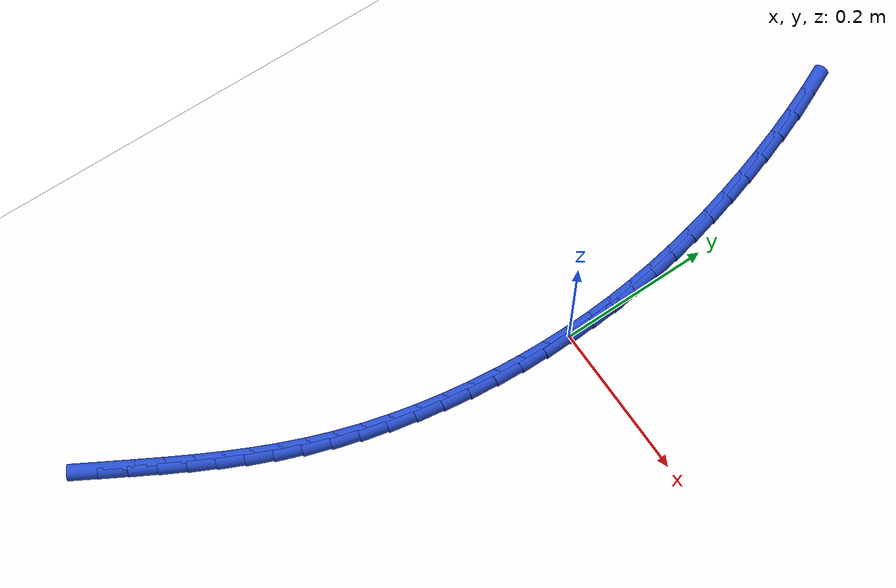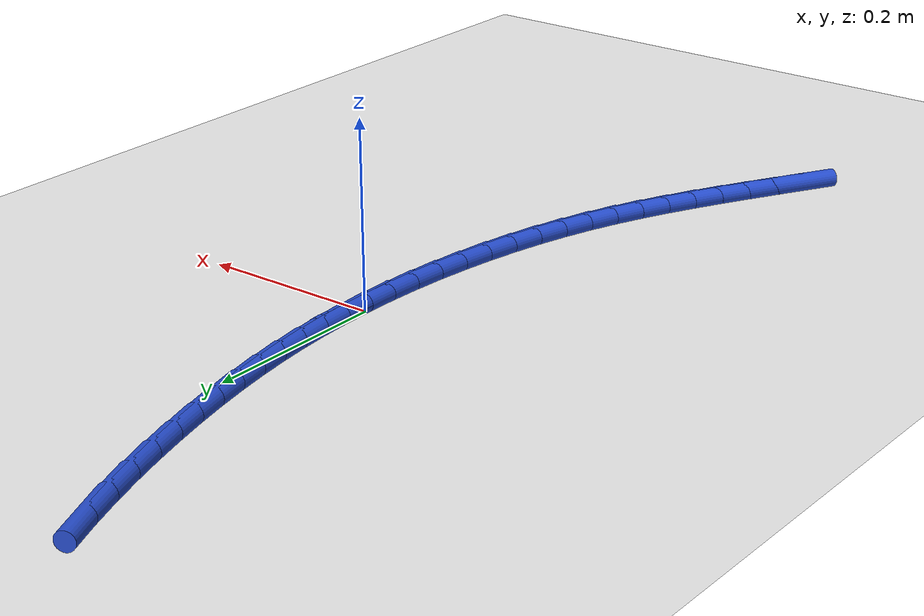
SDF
<sdf version="1.6">
 <world name="default">
  <model name="ground_plane">
   <static>1</static>
   <link name="link">
    <collision name="collision">
     <geometry><plane><normal>0 0 1</normal><size>100 100</size></plane></geometry>
     <surface><friction><ode><mu>100</mu><mu2>50</mu2></ode></friction></surface>
    </collision>
    <visual name="visual">
     <cast_shadows>0</cast_shadows>
     <geometry><plane><normal>0 0 1</normal><size>100 100</size></plane></geometry>
     <material>
      <script><uri>file://media/materials/scripts/gazebo.material</uri><name>Gazebo/WhiteGlow</name></script>
     </material>
    </visual>
   </link>
  </model>
  <model name="line">
   <link name="link_0">
    <pose>1.5612511283791264e-17 -6.938893903907228e-17 0.01 0 1.57 -1.5468301121806811</pose>
    <collision name="collision">
     <geometry><cylinder><radius>0.01</radius><length>0.08</length></cylinder></geometry>
    </collision>
    <visual name="visual">
     <material>
      <script><name>Gazebo/Blue</name><uri>file://media/materials/scripts/gazebo.material</uri></script>
     </material>
     <geometry><cylinder><radius>0.01</radius><length>0.08</length></cylinder></geometry>
    </visual>
   </link>
   <link name="link_1">
    <pose>-0.0008232692903801181 0.034344667049356056 0.01 0 1.57 -1.5116238401497004</pose>
    <collision name="collision">
     <geometry><cylinder><radius>0.01</radius><length>0.08</length></cylinder></geometry>
    </collision>
    <visual name="visual">
     <material>
      <script><name>Gazebo/Blue</name><uri>file://media/materials/scripts/gazebo.material</uri></script>
     </material>
     <geometry><cylinder><radius>0.01</radius><length>0.08</length></cylinder></geometry>
    </visual>
   </link>
   <link name="link_2">
    <pose>-0.0028426408338338882 0.0684316936888838 0.01 0 1.57 -1.4769170290811109</pose>
    <collision name="collision">
     <geometry><cylinder><radius>0.01</radius><length>0.08</length></cylinder></geometry>
    </collision>
    <visual name="visual">
     <material>
      <script><name>Gazebo/Blue</name><uri>file://media/materials/scripts/gazebo.material</uri></script>
     </material>
     <geometry><cylinder><radius>0.01</radius><length>0.08</length></cylinder></geometry>
    </visual>
   </link>
   <link name="link_3">
    <pose>-0.006037344235162098 0.10236156579821623 0.01 0 1.57 -1.4430966344124054</pose>
    <collision name="collision">
     <geometry><cylinder><radius>0.01</radius><length>0.08</length></cylinder></geometry>
    </collision>
    <visual name="visual">
     <material>
      <script><name>Gazebo/Blue</name><uri>file://media/materials/scripts/gazebo.material</uri></script>
     </material>
     <geometry><cylinder><radius>0.01</radius><length>0.08</length></cylinder></geometry>
    </visual>
   </link>
   <link name="link_4">
    <pose>-0.010386609099165552 0.13623476925698658 0.01 0 1.57 -1.4105220477981952</pose>
    <collision name="collision">
     <geometry><cylinder><radius>0.01</radius><length>0.08</length></cylinder></geometry>
    </collision>
    <visual name="visual">
     <material>
      <script><name>Gazebo/Blue</name><uri>file://media/materials/scripts/gazebo.material</uri></script>
     </material>
     <geometry><cylinder><radius>0.01</radius><length>0.08</length></cylinder></geometry>
    </visual>
   </link>
   <link name="link_5">
    <pose>-0.01586966503064504 0.17015178994482788 0.01 0 1.57 -1.3795110600730716</pose>
    <collision name="collision">
     <geometry><cylinder><radius>0.01</radius><length>0.08</length></cylinder></geometry>
    </collision>
    <visual name="visual">
     <material>
      <script><name>Gazebo/Blue</name><uri>file://media/materials/scripts/gazebo.material</uri></script>
     </material>
     <geometry><cylinder><radius>0.01</radius><length>0.08</length></cylinder></geometry>
    </visual>
   </link>
   <link name="link_6">
    <pose>-0.02246574163440137 0.20421311374137338 0.01 0 1.57 -1.3503296061707348</pose>
    <collision name="collision">
     <geometry><cylinder><radius>0.01</radius><length>0.08</length></cylinder></geometry>
    </collision>
    <visual name="visual">
     <material>
      <script><name>Gazebo/Blue</name><uri>file://media/materials/scripts/gazebo.material</uri></script>
     </material>
     <geometry><cylinder><radius>0.01</radius><length>0.08</length></cylinder></geometry>
    </visual>
   </link>
   <link name="link_7">
    <pose>-0.030154068515235354 0.2385192265262563 0.01 0 1.57 -1.323185847687289</pose>
    <collision name="collision">
     <geometry><cylinder><radius>0.01</radius><length>0.08</length></cylinder></geometry>
    </collision>
    <visual name="visual">
     <material>
      <script><name>Gazebo/Blue</name><uri>file://media/materials/scripts/gazebo.material</uri></script>
     </material>
     <geometry><cylinder><radius>0.01</radius><length>0.08</length></cylinder></geometry>
    </visual>
   </link>
   <link name="link_8">
    <pose>-0.038913875277947756 0.27317061417910954 0.01 0 1.57 -1.298228519508676</pose>
    <collision name="collision">
     <geometry><cylinder><radius>0.01</radius><length>0.08</length></cylinder></geometry>
    </collision>
    <visual name="visual">
     <material>
      <script><name>Gazebo/Blue</name><uri>file://media/materials/scripts/gazebo.material</uri></script>
     </material>
     <geometry><cylinder><radius>0.01</radius><length>0.08</length></cylinder></geometry>
    </visual>
   </link>
   <link name="link_9">
    <pose>-0.04872439152733941 0.30826776257956645 0.01 0 1.57 -1.2748941390368624</pose>
    <collision name="collision">
     <geometry><cylinder><radius>0.01</radius><length>0.08</length></cylinder></geometry>
    </collision>
    <visual name="visual">
     <material>
      <script><name>Gazebo/Blue</name><uri>file://media/materials/scripts/gazebo.material</uri></script>
     </material>
     <geometry><cylinder><radius>0.01</radius><length>0.08</length></cylinder></geometry>
    </visual>
   </link>
   <link name="link_10">
    <pose>-0.05957353465155941 0.3438559948654001 0.01 0 1.57 -1.2503113816151594</pose>
    <collision name="collision">
     <geometry><cylinder><radius>0.01</radius><length>0.08</length></cylinder></geometry>
    </collision>
    <visual name="visual">
     <material>
      <script><name>Gazebo/Blue</name><uri>file://media/materials/scripts/gazebo.material</uri></script>
     </material>
     <geometry><cylinder><radius>0.01</radius><length>0.08</length></cylinder></geometry>
    </visual>
   </link>
   <link name="link_11">
    <pose>-0.0714862545436593 0.3797454977274361 0.01 0 1.57 -1.2234359088546058</pose>
    <collision name="collision">
     <geometry><cylinder><radius>0.01</radius><length>0.08</length></cylinder></geometry>
    </collision>
    <visual name="visual">
     <material>
      <script><name>Gazebo/Blue</name><uri>file://media/materials/scripts/gazebo.material</uri></script>
     </material>
     <geometry><cylinder><radius>0.01</radius><length>0.08</length></cylinder></geometry>
    </visual>
   </link>
   <link name="link_12">
    <pose>-0.08449736651621093 0.41568381775965096 0.01 0 1.57 -1.1939030078868191</pose>
    <collision name="collision">
     <geometry><cylinder><radius>0.01</radius><length>0.08</length></cylinder></geometry>
    </collision>
    <visual name="visual">
     <material>
      <script><name>Gazebo/Blue</name><uri>file://media/materials/scripts/gazebo.material</uri></script>
     </material>
     <geometry><cylinder><radius>0.01</radius><length>0.08</length></cylinder></geometry>
    </visual>
   </link>
   <link name="link_13">
    <pose>-0.09864168596992146 0.4514185009964106 0.01 0 1.57 -1.161293176589283</pose>
    <collision name="collision">
     <geometry><cylinder><radius>0.01</radius><length>0.08</length></cylinder></geometry>
    </collision>
    <visual name="visual">
     <material>
      <script><name>Gazebo/Blue</name><uri>file://media/materials/scripts/gazebo.material</uri></script>
     </material>
     <geometry><cylinder><radius>0.01</radius><length>0.08</length></cylinder></geometry>
    </visual>
   </link>
   <link name="link_183">
    <pose>-0.17157033121396034 -0.5544643690904087 0.01 0 1.57 1.044372744416787</pose>
    <collision name="collision">
     <geometry><cylinder><radius>0.01</radius><length>0.08</length></cylinder></geometry>
    </collision>
    <visual name="visual">
     <material>
      <script><name>Gazebo/Blue</name><uri>file://media/materials/scripts/gazebo.material</uri></script>
     </material>
     <geometry><cylinder><radius>0.01</radius><length>0.08</length></cylinder></geometry>
    </visual>
   </link>
   <link name="link_184">
    <pose>-0.15343282038709385 -0.5232532213805158 0.01 0 1.57 1.0510500064535906</pose>
    <collision name="collision">
     <geometry><cylinder><radius>0.01</radius><length>0.08</length></cylinder></geometry>
    </collision>
    <visual name="visual">
     <material>
      <script><name>Gazebo/Blue</name><uri>file://media/materials/scripts/gazebo.material</uri></script>
     </material>
     <geometry><cylinder><radius>0.01</radius><length>0.08</length></cylinder></geometry>
    </visual>
   </link>
   <link name="link_185">
    <pose>-0.13587825011060112 -0.49257548245214755 0.01 0 1.57 1.063538218670783</pose>
    <collision name="collision">
     <geometry><cylinder><radius>0.01</radius><length>0.08</length></cylinder></geometry>
    </collision>
    <visual name="visual">
     <material>
      <script><name>Gazebo/Blue</name><uri>file://media/materials/scripts/gazebo.material</uri></script>
     </material>
     <geometry><cylinder><radius>0.01</radius><length>0.08</length></cylinder></geometry>
    </visual>
   </link>
   <link name="link_186">
    <pose>-0.11901221636616506 -0.46222803201359725 0.01 0 1.57 1.0820140534770863</pose>
    <collision name="collision">
     <geometry><cylinder><radius>0.01</radius><length>0.08</length></cylinder></geometry>
    </collision>
    <visual name="visual">
     <material>
      <script><name>Gazebo/Blue</name><uri>file://media/materials/scripts/gazebo.material</uri></script>
     </material>
     <geometry><cylinder><radius>0.01</radius><length>0.08</length></cylinder></geometry>
    </visual>
   </link>
   <link name="link_187">
    <pose>-0.10294031513546874 -0.4320077497731579 0.01 0 1.57 1.1065137101024496</pose>
    <collision name="collision">
     <geometry><cylinder><radius>0.01</radius><length>0.08</length></cylinder></geometry>
    </collision>
    <visual name="visual">
     <material>
      <script><name>Gazebo/Blue</name><uri>file://media/materials/scripts/gazebo.material</uri></script>
     </material>
     <geometry><cylinder><radius>0.01</radius><length>0.08</length></cylinder></geometry>
    </visual>
   </link>
   <link name="link_188">
    <pose>-0.08776814240019515 -0.401711515439123 0.01 0 1.57 1.1369020929304896</pose>
    <collision name="collision">
     <geometry><cylinder><radius>0.01</radius><length>0.08</length></cylinder></geometry>
    </collision>
    <visual name="visual">
     <material>
      <script><name>Gazebo/Blue</name><uri>file://media/materials/scripts/gazebo.material</uri></script>
     </material>
     <geometry><cylinder><radius>0.01</radius><length>0.08</length></cylinder></geometry>
    </visual>
   </link>
   <link name="link_189">
    <pose>-0.07360129414202721 -0.37113620871978537 0.01 0 1.57 1.1728460108692746</pose>
    <collision name="collision">
     <geometry><cylinder><radius>0.01</radius><length>0.08</length></cylinder></geometry>
    </collision>
    <visual name="visual">
     <material>
      <script><name>Gazebo/Blue</name><uri>file://media/materials/scripts/gazebo.material</uri></script>
     </material>
     <geometry><cylinder><radius>0.01</radius><length>0.08</length></cylinder></geometry>
    </visual>
   </link>
   <link name="link_190">
    <pose>-0.060545366342647886 -0.34007870932343837 0.01 0 1.57 1.2137984102317931</pose>
    <collision name="collision">
     <geometry><cylinder><radius>0.01</radius><length>0.08</length></cylinder></geometry>
    </collision>
    <visual name="visual">
     <material>
      <script><name>Gazebo/Blue</name><uri>file://media/materials/scripts/gazebo.material</uri></script>
     </material>
     <geometry><cylinder><radius>0.01</radius><length>0.08</length></cylinder></geometry>
    </visual>
   </link>
   <link name="link_191">
    <pose>-0.0487059547982065 -0.30833589749877655 0.01 0 1.57 1.2578820283292718</pose>
    <collision name="collision">
     <geometry><cylinder><radius>0.01</radius><length>0.08</length></cylinder></geometry>
    </collision>
    <visual name="visual">
     <material>
      <script><name>Gazebo/Blue</name><uri>file://media/materials/scripts/gazebo.material</uri></script>
     </material>
     <geometry><cylinder><radius>0.01</radius><length>0.08</length></cylinder></geometry>
    </visual>
   </link>
   <link name="link_192">
    <pose>-0.038167887585325265 -0.275765143346743 0.01 0 1.57 1.3005214596610855</pose>
    <collision name="collision">
     <geometry><cylinder><radius>0.01</radius><length>0.08</length></cylinder></geometry>
    </collision>
    <visual name="visual">
     <material>
      <script><name>Gazebo/Blue</name><uri>file://media/materials/scripts/gazebo.material</uri></script>
     </material>
     <geometry><cylinder><radius>0.01</radius><length>0.08</length></cylinder></geometry>
    </visual>
   </link>
   <link name="link_193">
    <pose>-0.028938035561105028 -0.24245088189393163 0.01 0 1.57 1.3410507689279019</pose>
    <collision name="collision">
     <geometry><cylinder><radius>0.01</radius><length>0.08</length></cylinder></geometry>
    </collision>
    <visual name="visual">
     <material>
      <script><name>Gazebo/Blue</name><uri>file://media/materials/scripts/gazebo.material</uri></script>
     </material>
     <geometry><cylinder><radius>0.01</radius><length>0.08</length></cylinder></geometry>
    </visual>
   </link>
   <link name="link_194">
    <pose>-0.021004980907997482 -0.2085308173391231 0.01 0 1.57 1.3798388753524191</pose>
    <collision name="collision">
     <geometry><cylinder><radius>0.01</radius><length>0.08</length></cylinder></geometry>
    </collision>
    <visual name="visual">
     <material>
      <script><name>Gazebo/Blue</name><uri>file://media/materials/scripts/gazebo.material</uri></script>
     </material>
     <geometry><cylinder><radius>0.01</radius><length>0.08</length></cylinder></geometry>
    </visual>
   </link>
   <link name="link_195">
    <pose>-0.01435730580845408 -0.1741426538810971 0.01 0 1.57 1.4172355774971979</pose>
    <collision name="collision">
     <geometry><cylinder><radius>0.01</radius><length>0.08</length></cylinder></geometry>
    </collision>
    <visual name="visual">
     <material>
      <script><name>Gazebo/Blue</name><uri>file://media/materials/scripts/gazebo.material</uri></script>
     </material>
     <geometry><cylinder><radius>0.01</radius><length>0.08</length></cylinder></geometry>
    </visual>
   </link>
   <link name="link_196">
    <pose>-0.008983592444926273 -0.1394240957186335 0.01 0 1.57 1.4535755966699722</pose>
    <collision name="collision">
     <geometry><cylinder><radius>0.01</radius><length>0.08</length></cylinder></geometry>
    </collision>
    <visual name="visual">
     <material>
      <script><name>Gazebo/Blue</name><uri>file://media/materials/scripts/gazebo.material</uri></script>
     </material>
     <geometry><cylinder><radius>0.01</radius><length>0.08</length></cylinder></geometry>
    </visual>
   </link>
   <link name="link_197">
    <pose>-0.004872422999865508 -0.10451284705051216 0.01 0 1.57 1.4891835761690158</pose>
    <collision name="collision">
     <geometry><cylinder><radius>0.01</radius><length>0.08</length></cylinder></geometry>
    </collision>
    <visual name="visual">
     <material>
      <script><name>Gazebo/Blue</name><uri>file://media/materials/scripts/gazebo.material</uri></script>
     </material>
     <geometry><cylinder><radius>0.01</radius><length>0.08</length></cylinder></geometry>
    </visual>
   </link>
   <link name="link_198">
    <pose>-0.002012379655723238 -0.06954661207551292 0.01 0 1.57 1.5243798137162161</pose>
    <collision name="collision">
     <geometry><cylinder><radius>0.01</radius><length>0.08</length></cylinder></geometry>
    </collision>
    <visual name="visual">
     <material>
      <script><name>Gazebo/Blue</name><uri>file://media/materials/scripts/gazebo.material</uri></script>
     </material>
     <geometry><cylinder><radius>0.01</radius><length>0.08</length></cylinder></geometry>
    </visual>
   </link>
   <link name="link_199">
    <pose>-0.00039204459495090563 -0.034663094992415565 0.01 0 1.57 1.5594866650459338</pose>
    <collision name="collision">
     <geometry><cylinder><radius>0.01</radius><length>0.08</length></cylinder></geometry>
    </collision>
    <visual name="visual">
     <material>
      <script><name>Gazebo/Blue</name><uri>file://media/materials/scripts/gazebo.material</uri></script>
     </material>
     <geometry><cylinder><radius>0.01</radius><length>0.08</length></cylinder></geometry>
    </visual>
   </link>
   <link name="link_200">
    <pose>2.949029909160572e-17 2.0816681711721685e-17 0.01 0 1.57 -1.5467569764718245</pose>
    <collision name="collision">
     <geometry><cylinder><radius>0.01</radius><length>0.08</length></cylinder></geometry>
    </collision>
    <visual name="visual">
     <material>
      <script><name>Gazebo/Blue</name><uri>file://media/materials/scripts/gazebo.material</uri></script>
     </material>
     <geometry><cylinder><radius>0.01</radius><length>0.08</length></cylinder></geometry>
    </visual>
   </link>
   <link name="link_201">
    <pose>-0.0008248280533219108 0.03430496870295476 0.01 0 1.57 -1.546756976471825</pose>
    <collision name="collision">
     <geometry><cylinder><radius>0.01</radius><length>0.08</length></cylinder></geometry>
    </collision>
    <visual name="visual">
     <material>
      <script><name>Gazebo/Blue</name><uri>file://media/materials/scripts/gazebo.material</uri></script>
     </material>
     <geometry><cylinder><radius>0.01</radius><length>0.08</length></cylinder></geometry>
    </visual>
   </link>
  </model>
 </world>
</sdf>
